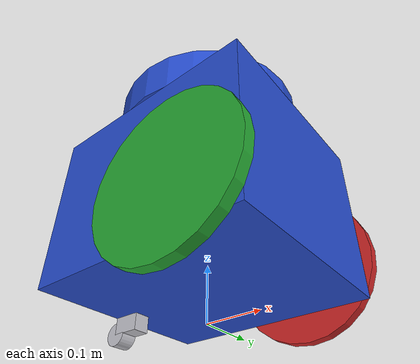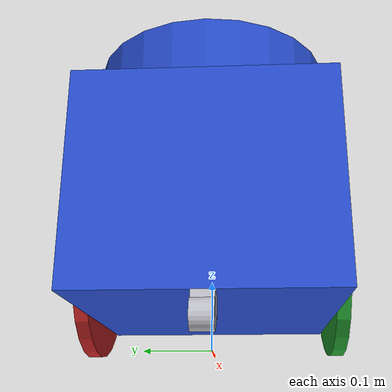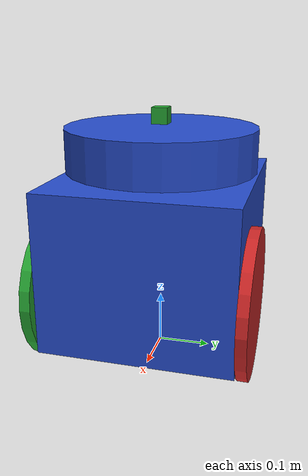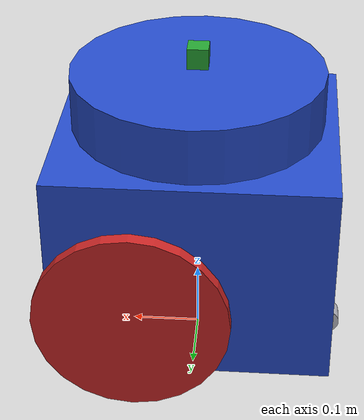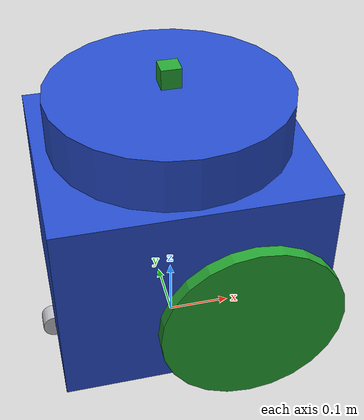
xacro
<?xml version="1.0"?>

<robot name="$(arg name)" xmlns:xacro="http://www.ros.org/wiki/xacro">
  <!-- ====================== Properties ====================== -->
  <xacro:property name="robot_base_width" value="0.36" />
  <xacro:property name="robot_base_length" value="0.4" />
  <xacro:property name="robot_base_height" value="0.3" />
  <xacro:property name="robot_base_mass" value="4.5" />

  <xacro:property name="robot_wheel_zoffset" value="-0.06" />
  <xacro:property name="robot_wheel_xoffset" value="0.08" />
  <xacro:property name="robot_wheel_radius" value="0.14" />
  <xacro:property name="robot_wheel_width" value="0.02" />

  <xacro:property name="robot_caster_link_height" value="0.03" />
  <xacro:property name="robot_caster_link_width" value="0.03" />
  <xacro:property name="robot_caster_link_length" value="0.05" />
  <xacro:property name="robot_caster_link_offset" value="-0.025" />
  <xacro:property name="robot_caster_joint_offset" value="-0.15" />
  <xacro:property name="robot_caster_wheel_radius" value="0.02" />

  <!-- Sensor geometry -->
  <xacro:property name="robot_laser_radius" value="0.10" />
  <xacro:property name="robot_laser_height" value="0.08" />
  <xacro:property name="robot_sonar_radius" value="0.18" />
  <xacro:property name="robot_sonar_height" value="0.08" />

  <!-- ====================== Includes ====================== -->
  <xacro:include filename="$(find cpmr_ch4)/colors.xacro" />

  <!-- ====================== Inertia helpers ====================== -->
  <xacro:macro name="I_cylinder" params="m r h">
    <inertial>
      <mass value="${m}" />
      <inertia
        ixx="${m*(3*r*r+h*h)/12}"
        iyy="${m*(3*r*r+h*h)/12}"
        izz="${m*r*r/2}"
        ixy="0"
        ixz="0"
        iyz="0" />
    </inertial>
  </xacro:macro>

  <xacro:macro name="I_cuboid" params="m x y z">
    <inertial>
      <mass value="${m}" />
      <inertia
        ixx="${m*(y*y+z*z)/12}"
        iyy="${m*(x*x+z*z)/12}"
        izz="${m*(x*x+z*z)/12}"
        ixy="0"
        ixz="0"
        iyz="0" />
    </inertial>
  </xacro:macro>

  <!-- ====================== Footprint & Base ====================== -->
  <link name="base_footprint" />

  <gazebo reference="base_link">
    <material>Gazebo/Blue</material>
  </gazebo>

  <link name="base_link">
    <visual>
      <geometry>
        <box size="${robot_base_length} ${robot_base_width} ${robot_base_height}" />
      </geometry>
      <material name="blue" />
    </visual>
    <collision>
      <geometry>
        <box size="${robot_base_length} ${robot_base_width} ${robot_base_height}" />
      </geometry>
    </collision>
    <xacro:I_cuboid m="8.4" x="${robot_base_length}" y="${robot_base_width}" z="${robot_base_height}" />
  </link>

  <joint name="base_joint" type="fixed">
    <origin xyz="0 0 ${robot_wheel_radius-robot_wheel_zoffset}" rpy="0 0 0" />
    <parent link="base_footprint" />
    <child link="base_link" />
  </joint>

  <!-- ====================== LIDAR (reference) ====================== -->
  <gazebo reference="laser_link">
    <material>Gazebo/Red</material>
  </gazebo>

  <link name="laser_link">
    <visual>
      <geometry>
        <cylinder length="${robot_laser_height}" radius="${robot_laser_radius}" />
      </geometry>
      <material name="red" />
    </visual>
    <collision>
      <geometry>
        <cylinder length="${robot_laser_height}" radius="${robot_laser_radius}" />
      </geometry>
    </collision>
    <xacro:I_cylinder m="0.1" r="${robot_laser_radius}" h="${robot_laser_height}" />
  </link>

  <!-- Co-located with SONAR in x,y; mounted on top face of base -->
  <joint name="laser_joint" type="fixed">
    <origin xyz="0 0 ${robot_base_height/2 + robot_laser_height/2}" rpy="0 0 0" />
    <parent link="base_link" />
    <child link="laser_link" />
  </joint>

  <gazebo reference="laser_link">
    <static>true</static>
    <sensor type="ray" name="laser">
      <pose>0 0 0 0 0 0</pose>
      <visualize>true</visualize>
      <update_rate>10</update_rate>
      <ray>
        <scan>
          <horizontal>
            <samples>360</samples>
            <resolution>1</resolution>
            <min_angle>-3.1415</min_angle>
            <max_angle>3.1240</max_angle>
          </horizontal>
        </scan>
        <range>
          <min>0.20</min>
          <max>10.0</max>
          <resolution>0.01</resolution>
        </range>
      </ray>
      <plugin name="laser_controller" filename="libgazebo_ros_ray_sensor.so">
        <ros>
          <namespace>/</namespace>
          <remapping>~/out:=scan</remapping>
        </ros>
        <frameName>laser_link</frameName>
        <output_type>sensor_msgs/LaserScan</output_type>
      </plugin>
    </sensor>
  </gazebo>

  <!-- ====================== SONAR (1 cm higher) ====================== -->
  <gazebo reference="sonar_link">
    <material>Gazebo/Blue</material>
  </gazebo>

  <link name="sonar_link">
    <visual>
      <geometry>
        <cylinder length="${robot_sonar_height}" radius="${robot_sonar_radius}" />
      </geometry>
      <material name="blue" />
    </visual>
    <collision>
      <geometry>
        <cylinder length="${robot_sonar_height}" radius="${robot_sonar_radius}" />
      </geometry>
    </collision>
    <xacro:I_cylinder m="0.1" r="${robot_sonar_radius}" h="${robot_sonar_height}" />
  </link>

  <joint name="sonar_joint" type="fixed">
    <!-- same x,y as LIDAR; z is +1 cm -->
    <origin xyz="0 0 ${robot_base_height/2 + robot_sonar_height/2 + 0.01}" rpy="0 0 0" />
    <parent link="base_link" />
    <child link="sonar_link" />
  </joint>

  <gazebo reference="sonar_link">
    <sensor type="ray" name="sonar">
      <pose>0 0 0 0 0 0</pose>
      <visualize>true</visualize>
      <update_rate>10</update_rate>
      <ray>
        <scan>
          <horizontal>
            <samples>9</samples>
            <resolution>1</resolution>
            <min_angle>-0.1309</min_angle>
            <max_angle>0.1309</max_angle>
          </horizontal>
          <vertical>
            <samples>9</samples>
            <resolution>1</resolution>
            <min_angle>-0.1309</min_angle>
            <max_angle>0.1309</max_angle>
          </vertical>
        </scan>
        <range>
          <min>0.20</min>
          <max>5.0</max>
          <resolution>0.01</resolution>
        </range>
      </ray>
      <plugin name="sonar_plugin" filename="libgazebo_ros_ray_sensor.so">
        <frame_name>sonar_link</frame_name>
        <updateRate>10</updateRate>
        <radiation>ultrasound</radiation>
        <output_type>sensor_msgs/Range</output_type>
        <ros>
          <remapping>~/out:=sonar</remapping>
        </ros>
      </plugin>
    </sensor>
  </gazebo>

  <!-- ====================== Visual cue cube ====================== -->
  <link name="sensor_cue">
    <visual>
      <geometry>
        <box size="0.03 0.03 0.03" />
      </geometry>
      <material name="green" />
    </visual>
  </link>

  <joint name="sensor_cue_joint" type="fixed">
    <!-- float a bit above the taller of the two sensors -->
    <origin xyz="0 0 ${robot_base_height/2 + max(robot_sonar_height, robot_laser_height) + 0.03}" rpy="0 0 0" />
    <parent link="base_link" />
    <child link="sensor_cue" />
  </joint>

  <!-- ====================== Wheels ====================== -->
  <gazebo reference="left_wheel_link">
    <material>Gazebo/Red</material>
  </gazebo>

  <link name="left_wheel_link">
    <visual>
      <geometry>
        <cylinder length="${robot_wheel_width}" radius="${robot_wheel_radius}" />
      </geometry>
      <material name="red" />
    </visual>
    <collision>
      <geometry>
        <cylinder length="${robot_wheel_width}" radius="${robot_wheel_radius}" />
      </geometry>
    </collision>
    <xacro:I_cylinder m="0.1" r="${robot_wheel_radius}" h="${robot_wheel_width}" />
  </link>

  <joint name="left_wheel_joint" type="continuous">
    <axis xyz="0 0 1" />
    <parent link="base_link" />
    <child link="left_wheel_link" />
    <origin rpy="-1.5708 0 0" xyz="${robot_wheel_xoffset} ${robot_base_width/2+robot_wheel_width/2} ${robot_wheel_zoffset}" />
  </joint>

  <gazebo reference="right_wheel_link">
    <material>Gazebo/Green</material>
  </gazebo>

  <link name="right_wheel_link">
    <visual>
      <geometry>
        <cylinder length="${robot_wheel_width}" radius="${robot_wheel_radius}" />
      </geometry>
      <material name="green" />
    </visual>
    <collision>
      <geometry>
        <cylinder length="${robot_wheel_width}" radius="${robot_wheel_radius}" />
      </geometry>
    </collision>
    <xacro:I_cylinder m="0.1" r="${robot_wheel_radius}" h="${robot_wheel_width}" />
  </link>

  <joint name="right_wheel_joint" type="continuous">
    <axis xyz="0 0 1" />
    <parent link="base_link" />
    <child link="right_wheel_link" />
    <origin rpy="-1.5708 0 0" xyz="${robot_wheel_xoffset} ${-robot_base_width/2-robot_wheel_width/2} ${robot_wheel_zoffset}" />
  </joint>

  <!-- ====================== Caster assembly ====================== -->
  <gazebo reference="caster_link">
    <material>Gazebo/Silver</material>
  </gazebo>

  <link name="caster_link">
    <visual>
      <origin xyz="${robot_caster_link_length/2} 0 0" rpy="0 0 0" />
      <geometry>
        <box size="${robot_caster_link_length} ${robot_caster_link_width} ${robot_caster_link_height}" />
      </geometry>
      <material name="silver" />
    </visual>
    <collision>
      <origin xyz="${robot_caster_link_length/2} 0 0" rpy="0 0 0" />
      <geometry>
        <box size="${robot_caster_link_length} ${robot_caster_link_width} ${robot_caster_link_height}" />
      </geometry>
    </collision>
    <xacro:I_cuboid m="0.1" x="${robot_caster_link_length}" y="${robot_caster_link_width}" z="${robot_caster_link_height}" />
  </link>

  <joint name="caster_joint" type="continuous">
    <axis xyz="0 0 1" />
    <parent link="base_link" />
    <child link="caster_link" />
    <origin rpy="0 0 3.1415" xyz="${robot_caster_joint_offset} 0 ${-robot_base_height/2-robot_caster_link_height/2}" />
  </joint>

  <gazebo reference="caster_wheel_link">
    <material>Gazebo/Silver</material>
  </gazebo>

  <link name="caster_wheel_link">
    <visual>
      <geometry>
        <cylinder length="${robot_caster_link_height}" radius="${robot_caster_wheel_radius}" />
      </geometry>
      <material name="silver" />
    </visual>
    <collision>
      <geometry>
        <cylinder length="${robot_caster_link_height}" radius="${robot_caster_wheel_radius}" />
      </geometry>
    </collision>
    <xacro:I_cylinder m="0.1" r="${robot_caster_wheel_radius}" h="${robot_caster_link_height}" />
  </link>

  <joint name="caster_wheel_joint" type="continuous">
    <axis xyz="0 0 1" />
    <child link="caster_wheel_link" />
    <parent link="caster_link" />
    <origin rpy="1.5708 0 0" xyz="${robot_caster_link_length} 0 ${-robot_caster_link_height/2}" />
  </joint>

  <!-- ====================== Gazebo plugins ====================== -->
  <gazebo>
    <plugin name="joint_state_publisher" filename="libgazebo_ros_joint_state_publisher.so">
      <joint_name>caster_wheel_joint</joint_name>
      <joint_name>caster_joint</joint_name>
      <joint_name>left_wheel_joint</joint_name>
      <joint_name>right_wheel_joint</joint_name>
    </plugin>
  </gazebo>

  <gazebo>
    <plugin name="differential_drive_controller" filename="libgazebo_ros_diff_drive.so">
      <update_rate>20</update_rate>
      <left_joint>left_wheel_joint</left_joint>
      <right_joint>right_wheel_joint</right_joint>
      <robotBaseFrame>base_footprint</robotBaseFrame>
      <wheel_separation>${robot_base_width+robot_wheel_width}</wheel_separation>
      <wheel_diameter>${2*robot_wheel_radius}</wheel_diameter>
      <publish_odom>true</publish_odom>
      <publish_odom_tf>true</publish_odom_tf>
      <publish_wheel_tf>true</publish_wheel_tf>
      <odometry_frame>odom</odometry_frame>
      <robot_base_frame>base_footprint</robot_base_frame>
      <command_topic>cmd_vel</command_topic>
    </plugin>
  </gazebo>
</robot>
